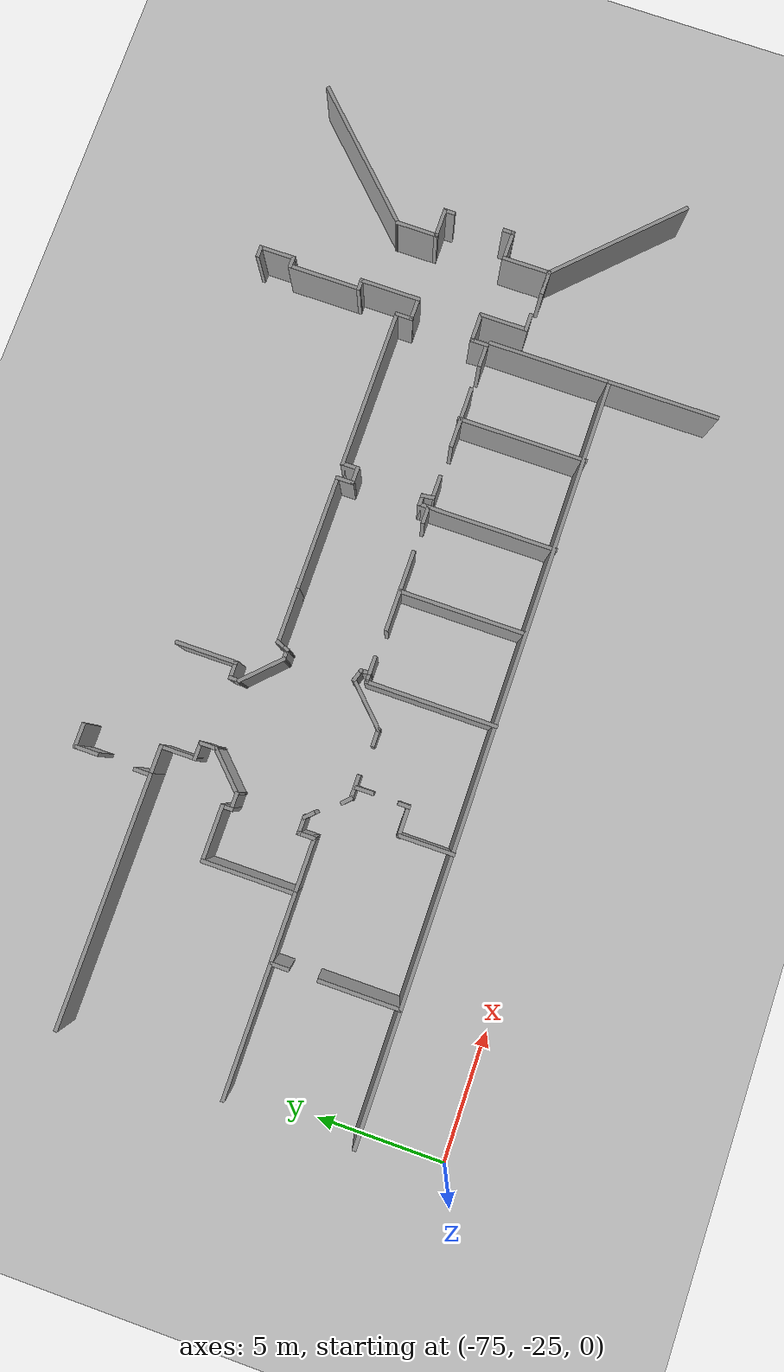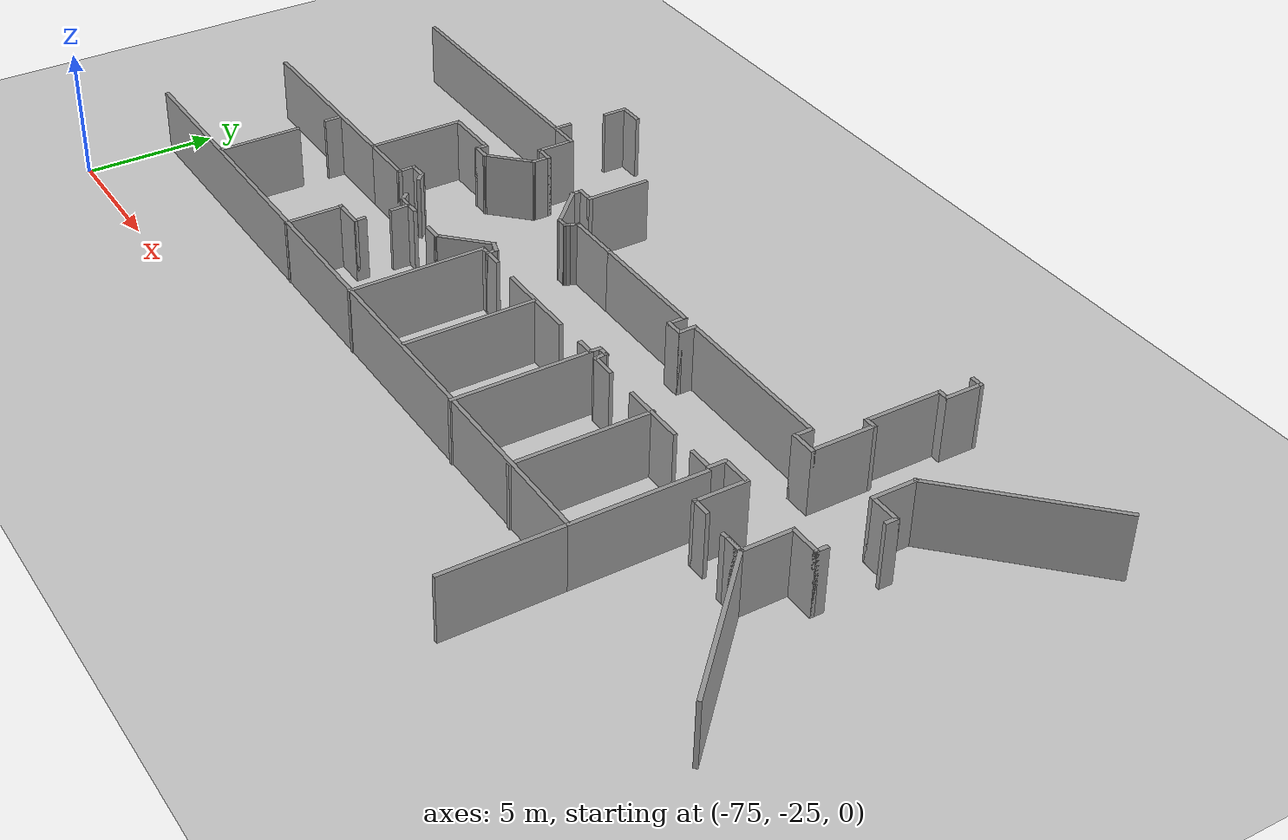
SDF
<sdf version="1.6">
 <world name="default">
  <model name="ground_plane">
   <static>1</static>
   <link name="link">
    <collision name="collision">
     <geometry><plane><normal>0 0 1</normal><size>200 100</size></plane></geometry>
     <surface><friction><ode><mu>100</mu><mu2>50</mu2></ode></friction></surface>
    </collision>
    <visual name="visual">
     <cast_shadows>0</cast_shadows>
     <geometry><plane><normal>0 0 1</normal><size>200 100</size></plane></geometry>
     <material>
      <script><uri>file://media/materials/scripts/gazebo.material</uri><name>Gazebo/Grey</name></script>
     </material>
    </visual>
   </link>
  </model>
  <model name="LuterFloorPlan">
   <pose>-8.27259 7.62647 0 0 -0 0</pose>
   <link name="Wall_110">
    <collision name="Wall_110_Collision">
     <geometry><box><size>30 0.15 2.5</size></box></geometry>
     <pose>0 0 1.25 0 -0 0</pose>
    </collision>
    <visual name="Wall_110_Visual">
     <pose>0 0 1.25 0 -0 0</pose>
     <geometry><box><size>30 0.15 2.5</size></box></geometry>
     <material>
      <script><uri>file://media/materials/scripts/gazebo.material</uri><name>Gazebo/Grey</name></script>
      <ambient>1 1 1 1</ambient>
     </material>
    </visual>
    <pose>-51.7345 -29.1583 0 0 -0 0</pose>
   </link>
   <link name="Wall_111">
    <collision name="Wall_111_Collision">
     <geometry><box><size>4.5 0.15 2.5</size></box></geometry>
     <pose>0 0 1.25 0 -0 0</pose>
    </collision>
    <visual name="Wall_111_Visual">
     <pose>0 0 1.25 0 -0 0</pose>
     <geometry><box><size>4.5 0.15 2.5</size></box></geometry>
     <material>
      <script><uri>file://media/materials/scripts/gazebo.material</uri><name>Gazebo/Grey</name></script>
      <ambient>1 1 1 1</ambient>
     </material>
    </visual>
    <pose>-36.8095 -31.3333 0 0 0 -1.5708</pose>
   </link>
   <link name="Wall_133">
    <collision name="Wall_133_Collision">
     <geometry><box><size>1 0.15 2.5</size></box></geometry>
     <pose>0 0 1.25 0 -0 0</pose>
    </collision>
    <visual name="Wall_133_Visual">
     <pose>0 0 1.25 0 -0 0</pose>
     <geometry><box><size>1 0.15 2.5</size></box></geometry>
     <material>
      <script><uri>file://media/materials/scripts/gazebo.material</uri><name>Gazebo/Grey</name></script>
      <ambient>1 1 1 1</ambient>
     </material>
    </visual>
    <pose>-56.2291 -14.6505 0 0 -0 3.14159</pose>
   </link>
   <link name="Wall_134">
    <collision name="Wall_134_Collision">
     <geometry><box><size>1 0.15 2.5</size></box></geometry>
     <pose>0 0 1.25 0 -0 0</pose>
    </collision>
    <visual name="Wall_134_Visual">
     <pose>0 0 1.25 0 -0 0</pose>
     <geometry><box><size>1 0.15 2.5</size></box></geometry>
     <material>
      <script><uri>file://media/materials/scripts/gazebo.material</uri><name>Gazebo/Grey</name></script>
      <ambient>1 1 1 1</ambient>
     </material>
    </visual>
    <pose>-56.6541 -15.0755 0 0 0 -1.5708</pose>
   </link>
   <link name="Wall_136">
    <collision name="Wall_136_Collision">
     <geometry><box><size>0.75 0.15 2.5</size></box></geometry>
     <pose>0 0 1.25 0 -0 0</pose>
    </collision>
    <visual name="Wall_136_Visual">
     <pose>0 0 1.25 0 -0 0</pose>
     <geometry><box><size>0.75 0.15 2.5</size></box></geometry>
     <material>
      <script><uri>file://media/materials/scripts/gazebo.material</uri><name>Gazebo/Grey</name></script>
      <ambient>1 1 1 1</ambient>
     </material>
    </visual>
    <pose>-56.7207 -17.3614 0 0 0 -1.5708</pose>
   </link>
   <link name="Wall_137">
    <collision name="Wall_137_Collision">
     <geometry><box><size>9.75 0.15 2.5</size></box></geometry>
     <pose>0 0 1.25 0 -0 0</pose>
    </collision>
    <visual name="Wall_137_Visual">
     <pose>0 0 1.25 0 -0 0</pose>
     <geometry><box><size>9.75 0.15 2.5</size></box></geometry>
     <material>
      <script><uri>file://media/materials/scripts/gazebo.material</uri><name>Gazebo/Grey</name></script>
      <ambient>1 1 1 1</ambient>
     </material>
    </visual>
    <pose>-61.5207 -17.6614 0 0 -0 3.14159</pose>
   </link>
   <link name="Wall_139">
    <collision name="Wall_139_Collision">
     <geometry><box><size>1.25 0.15 2.5</size></box></geometry>
     <pose>0 0 1.25 0 -0 0</pose>
    </collision>
    <visual name="Wall_139_Visual">
     <pose>0 0 1.25 0 -0 0</pose>
     <geometry><box><size>1.25 0.15 2.5</size></box></geometry>
     <material>
      <script><uri>file://media/materials/scripts/gazebo.material</uri><name>Gazebo/Grey</name></script>
      <ambient>1 1 1 1</ambient>
     </material>
    </visual>
    <pose>-56.1707 -17.6614 0 0 -0 0</pose>
   </link>
   <link name="Wall_140">
    <collision name="Wall_140_Collision">
     <geometry><box><size>1.5 0.15 2.5</size></box></geometry>
     <pose>0 0 1.25 0 -0 0</pose>
    </collision>
    <visual name="Wall_140_Visual">
     <pose>0 0 1.25 0 -0 0</pose>
     <geometry><box><size>1.5 0.15 2.5</size></box></geometry>
     <material>
      <script><uri>file://media/materials/scripts/gazebo.material</uri><name>Gazebo/Grey</name></script>
      <ambient>1 1 1 1</ambient>
     </material>
    </visual>
    <pose>-55.6207 -18.3364 0 0 0 -1.5708</pose>
   </link>
   <link name="Wall_141">
    <collision name="Wall_141_Collision">
     <geometry><box><size>0.75 0.15 2.5</size></box></geometry>
     <pose>0 0 1.25 0 -0 0</pose>
    </collision>
    <visual name="Wall_141_Visual">
     <pose>0 0 1.25 0 -0 0</pose>
     <geometry><box><size>0.75 0.15 2.5</size></box></geometry>
     <material>
      <script><uri>file://media/materials/scripts/gazebo.material</uri><name>Gazebo/Grey</name></script>
      <ambient>1 1 1 1</ambient>
     </material>
    </visual>
    <pose>-55.3207 -19.0114 0 0 -0 0</pose>
   </link>
   <link name="Wall_142">
    <collision name="Wall_142_Collision">
     <geometry><box><size>0.75 0.15 2.5</size></box></geometry>
     <pose>0 0 1.25 0 -0 0</pose>
    </collision>
    <visual name="Wall_142_Visual">
     <pose>0 0 1.25 0 -0 0</pose>
     <geometry><box><size>0.75 0.15 2.5</size></box></geometry>
     <material>
      <script><uri>file://media/materials/scripts/gazebo.material</uri><name>Gazebo/Grey</name></script>
      <ambient>1 1 1 1</ambient>
     </material>
    </visual>
    <pose>-55.0207 -19.3114 0 0 0 -1.5708</pose>
   </link>
   <link name="Wall_143">
    <collision name="Wall_143_Collision">
     <geometry><box><size>2 0.15 2.5</size></box></geometry>
     <pose>0 0 1.25 0 -0 0</pose>
    </collision>
    <visual name="Wall_143_Visual">
     <pose>0 0 1.25 0 -0 0</pose>
     <geometry><box><size>2 0.15 2.5</size></box></geometry>
     <material>
      <script><uri>file://media/materials/scripts/gazebo.material</uri><name>Gazebo/Grey</name></script>
      <ambient>1 1 1 1</ambient>
     </material>
    </visual>
    <pose>-55.6748 -20.2655 0 0 0 -2.35619</pose>
   </link>
   <link name="Wall_144">
    <collision name="Wall_144_Collision">
     <geometry><box><size>0.75 0.15 2.5</size></box></geometry>
     <pose>0 0 1.25 0 -0 0</pose>
    </collision>
    <visual name="Wall_144_Visual">
     <pose>0 0 1.25 0 -0 0</pose>
     <geometry><box><size>0.75 0.15 2.5</size></box></geometry>
     <material>
      <script><uri>file://media/materials/scripts/gazebo.material</uri><name>Gazebo/Grey</name></script>
      <ambient>1 1 1 1</ambient>
     </material>
    </visual>
    <pose>-56.6288 -20.9196 0 0 -0 3.14159</pose>
   </link>
   <link name="Wall_145">
    <collision name="Wall_145_Collision">
     <geometry><box><size>0.5 0.15 2.5</size></box></geometry>
     <pose>0 0 1.25 0 -0 0</pose>
    </collision>
    <visual name="Wall_145_Visual">
     <pose>0 0 1.25 0 -0 0</pose>
     <geometry><box><size>0.5 0.15 2.5</size></box></geometry>
     <material>
      <script><uri>file://media/materials/scripts/gazebo.material</uri><name>Gazebo/Grey</name></script>
      <ambient>1 1 1 1</ambient>
     </material>
    </visual>
    <pose>-56.9288 -20.7446 0 0 -0 1.5708</pose>
   </link>
   <link name="Wall_148">
    <collision name="Wall_148_Collision">
     <geometry><box><size>2.5 0.15 2.5</size></box></geometry>
     <pose>0 0 1.25 0 -0 0</pose>
    </collision>
    <visual name="Wall_148_Visual">
     <pose>0 0 1.25 0 -0 0</pose>
     <geometry><box><size>2.5 0.15 2.5</size></box></geometry>
     <material>
      <script><uri>file://media/materials/scripts/gazebo.material</uri><name>Gazebo/Grey</name></script>
      <ambient>1 1 1 1</ambient>
     </material>
    </visual>
    <pose>-51.7739 -18.0403 0 0 0 -1.5708</pose>
   </link>
   <link name="Wall_149">
    <collision name="Wall_149_Collision">
     <geometry><box><size>0.75 0.15 2.5</size></box></geometry>
     <pose>0 0 1.25 0 -0 0</pose>
    </collision>
    <visual name="Wall_149_Visual">
     <pose>0 0 1.25 0 -0 0</pose>
     <geometry><box><size>0.75 0.15 2.5</size></box></geometry>
     <material>
      <script><uri>file://media/materials/scripts/gazebo.material</uri><name>Gazebo/Grey</name></script>
      <ambient>1 1 1 1</ambient>
     </material>
    </visual>
    <pose>-52.0739 -19.2153 0 0 -0 3.14159</pose>
   </link>
   <link name="Wall_151">
    <collision name="Wall_151_Collision">
     <geometry><box><size>0.5 0.15 2.5</size></box></geometry>
     <pose>0 0 1.25 0 -0 0</pose>
    </collision>
    <visual name="Wall_151_Visual">
     <pose>0 0 1.25 0 -0 0</pose>
     <geometry><box><size>0.5 0.15 2.5</size></box></geometry>
     <material>
      <script><uri>file://media/materials/scripts/gazebo.material</uri><name>Gazebo/Grey</name></script>
      <ambient>1 1 1 1</ambient>
     </material>
    </visual>
    <pose>-52.3739 -19.3903 0 0 0 -1.5708</pose>
   </link>
   <link name="Wall_152">
    <collision name="Wall_152_Collision">
     <geometry><box><size>2 0.15 2.5</size></box></geometry>
     <pose>0 0 1.25 0 -0 0</pose>
    </collision>
    <visual name="Wall_152_Visual">
     <pose>0 0 1.25 0 -0 0</pose>
     <geometry><box><size>2 0.15 2.5</size></box></geometry>
     <material>
      <script><uri>file://media/materials/scripts/gazebo.material</uri><name>Gazebo/Grey</name></script>
      <ambient>1 1 1 1</ambient>
     </material>
    </visual>
    <pose>-51.7198 -20.2194 0 0 0 -0.785398</pose>
   </link>
   <link name="Wall_153">
    <collision name="Wall_153_Collision">
     <geometry><box><size>0.5 0.15 2.5</size></box></geometry>
     <pose>0 0 1.25 0 -0 0</pose>
    </collision>
    <visual name="Wall_153_Visual">
     <pose>0 0 1.25 0 -0 0</pose>
     <geometry><box><size>0.5 0.15 2.5</size></box></geometry>
     <material>
      <script><uri>file://media/materials/scripts/gazebo.material</uri><name>Gazebo/Grey</name></script>
      <ambient>1 1 1 1</ambient>
     </material>
    </visual>
    <pose>-50.8907 -20.8735 0 0 -0 0</pose>
   </link>
   <link name="Wall_154">
    <collision name="Wall_154_Collision">
     <geometry><box><size>0.25 0.15 2.5</size></box></geometry>
     <pose>0 0 1.25 0 -0 0</pose>
    </collision>
    <visual name="Wall_154_Visual">
     <pose>0 0 1.25 0 -0 0</pose>
     <geometry><box><size>0.25 0.15 2.5</size></box></geometry>
     <material>
      <script><uri>file://media/materials/scripts/gazebo.material</uri><name>Gazebo/Grey</name></script>
      <ambient>1 1 1 1</ambient>
     </material>
    </visual>
    <pose>-50.6907 -20.8302 0 0 -0 1.0472</pose>
   </link>
   <link name="Wall_156">
    <collision name="Wall_156_Collision">
     <geometry><box><size>0.604171 0.15 2.5</size></box></geometry>
     <pose>0 0 1.25 0 -0 0</pose>
    </collision>
    <visual name="Wall_156_Visual">
     <pose>0 0 1.25 0 -0 0</pose>
     <geometry><box><size>0.604171 0.15 2.5</size></box></geometry>
     <material>
      <script><uri>file://media/materials/scripts/gazebo.material</uri><name>Gazebo/Grey</name></script>
      <ambient>1 1 1 1</ambient>
     </material>
    </visual>
    <pose>-50.6231 -20.6661 0 0 0 -1.99089</pose>
   </link>
   <link name="Wall_158">
    <collision name="Wall_158_Collision">
     <geometry><box><size>2.25 0.15 2.5</size></box></geometry>
     <pose>0 0 1.25 0 -0 0</pose>
    </collision>
    <visual name="Wall_158_Visual">
     <pose>0 0 1.25 0 -0 0</pose>
     <geometry><box><size>2.25 0.15 2.5</size></box></geometry>
     <material>
      <script><uri>file://media/materials/scripts/gazebo.material</uri><name>Gazebo/Grey</name></script>
      <ambient>1 1 1 1</ambient>
     </material>
    </visual>
    <pose>-49.4805 -20.4588 0 0 -0 0</pose>
   </link>
   <link name="Wall_160">
    <collision name="Wall_160_Collision">
     <geometry><box><size>4.75 0.15 2.5</size></box></geometry>
     <pose>0 0 1.25 0 -0 0</pose>
    </collision>
    <visual name="Wall_160_Visual">
     <pose>0 0 1.25 0 -0 0</pose>
     <geometry><box><size>4.75 0.15 2.5</size></box></geometry>
     <material>
      <script><uri>file://media/materials/scripts/gazebo.material</uri><name>Gazebo/Grey</name></script>
      <ambient>1 1 1 1</ambient>
     </material>
    </visual>
    <pose>-46.1305 -20.4588 0 0 -0 0</pose>
   </link>
   <link name="Wall_162">
    <collision name="Wall_162_Collision">
     <geometry><box><size>0.75 0.15 2.5</size></box></geometry>
     <pose>0 0 1.25 0 -0 0</pose>
    </collision>
    <visual name="Wall_162_Visual">
     <pose>0 0 1.25 0 -0 0</pose>
     <geometry><box><size>0.75 0.15 2.5</size></box></geometry>
     <material>
      <script><uri>file://media/materials/scripts/gazebo.material</uri><name>Gazebo/Grey</name></script>
      <ambient>1 1 1 1</ambient>
     </material>
    </visual>
    <pose>-43.8305 -20.7588 0 0 0 -1.5708</pose>
   </link>
   <link name="Wall_163">
    <collision name="Wall_163_Collision">
     <geometry><box><size>0.75 0.15 2.5</size></box></geometry>
     <pose>0 0 1.25 0 -0 0</pose>
    </collision>
    <visual name="Wall_163_Visual">
     <pose>0 0 1.25 0 -0 0</pose>
     <geometry><box><size>0.75 0.15 2.5</size></box></geometry>
     <material>
      <script><uri>file://media/materials/scripts/gazebo.material</uri><name>Gazebo/Grey</name></script>
      <ambient>1 1 1 1</ambient>
     </material>
    </visual>
    <pose>-43.5305 -21.0588 0 0 -0 0</pose>
   </link>
   <link name="Wall_164">
    <collision name="Wall_164_Collision">
     <geometry><box><size>0.75 0.15 2.5</size></box></geometry>
     <pose>0 0 1.25 0 -0 0</pose>
    </collision>
    <visual name="Wall_164_Visual">
     <pose>0 0 1.25 0 -0 0</pose>
     <geometry><box><size>0.75 0.15 2.5</size></box></geometry>
     <material>
      <script><uri>file://media/materials/scripts/gazebo.material</uri><name>Gazebo/Grey</name></script>
      <ambient>1 1 1 1</ambient>
     </material>
    </visual>
    <pose>-43.2305 -20.7588 0 0 -0 1.5708</pose>
   </link>
   <link name="Wall_165">
    <collision name="Wall_165_Collision">
     <geometry><box><size>6.5 0.15 2.5</size></box></geometry>
     <pose>0 0 1.25 0 -0 0</pose>
    </collision>
    <visual name="Wall_165_Visual">
     <pose>0 0 1.25 0 -0 0</pose>
     <geometry><box><size>6.5 0.15 2.5</size></box></geometry>
     <material>
      <script><uri>file://media/materials/scripts/gazebo.material</uri><name>Gazebo/Grey</name></script>
      <ambient>1 1 1 1</ambient>
     </material>
    </visual>
    <pose>-40.0555 -20.4588 0 0 -0 0</pose>
   </link>
   <link name="Wall_167">
    <collision name="Wall_167_Collision">
     <geometry><box><size>2.25 0.15 2.5</size></box></geometry>
     <pose>0 0 1.25 0 -0 0</pose>
    </collision>
    <visual name="Wall_167_Visual">
     <pose>0 0 1.25 0 -0 0</pose>
     <geometry><box><size>2.25 0.15 2.5</size></box></geometry>
     <material>
      <script><uri>file://media/materials/scripts/gazebo.material</uri><name>Gazebo/Grey</name></script>
      <ambient>1 1 1 1</ambient>
     </material>
    </visual>
    <pose>-57.9788 -20.5696 0 0 -0 3.14159</pose>
   </link>
   <link name="Wall_168">
    <collision name="Wall_168_Collision">
     <geometry><box><size>3.75 0.15 2.5</size></box></geometry>
     <pose>0 0 1.25 0 -0 0</pose>
    </collision>
    <visual name="Wall_168_Visual">
     <pose>0 0 1.25 0 -0 0</pose>
     <geometry><box><size>3.75 0.15 2.5</size></box></geometry>
     <material>
      <script><uri>file://media/materials/scripts/gazebo.material</uri><name>Gazebo/Grey</name></script>
      <ambient>1 1 1 1</ambient>
     </material>
    </visual>
    <pose>-59.0288 -22.3696 0 0 0 -1.5708</pose>
   </link>
   <link name="Wall_169">
    <collision name="Wall_169_Collision">
     <geometry><box><size>2.25 0.15 2.5</size></box></geometry>
     <pose>0 0 1.25 0 -0 0</pose>
    </collision>
    <visual name="Wall_169_Visual">
     <pose>0 0 1.25 0 -0 0</pose>
     <geometry><box><size>2.25 0.15 2.5</size></box></geometry>
     <material>
      <script><uri>file://media/materials/scripts/gazebo.material</uri><name>Gazebo/Grey</name></script>
      <ambient>1 1 1 1</ambient>
     </material>
    </visual>
    <pose>-57.9788 -24.1696 0 0 -0 0</pose>
   </link>
   <link name="Wall_170">
    <collision name="Wall_170_Collision">
     <geometry><box><size>0.75 0.15 2.5</size></box></geometry>
     <pose>0 0 1.25 0 -0 0</pose>
    </collision>
    <visual name="Wall_170_Visual">
     <pose>0 0 1.25 0 -0 0</pose>
     <geometry><box><size>0.75 0.15 2.5</size></box></geometry>
     <material>
      <script><uri>file://media/materials/scripts/gazebo.material</uri><name>Gazebo/Grey</name></script>
      <ambient>1 1 1 1</ambient>
     </material>
    </visual>
    <pose>-56.9288 -23.8696 0 0 -0 1.5708</pose>
   </link>
   <link name="Wall_171">
    <collision name="Wall_171_Collision">
     <geometry><box><size>0.75 0.15 2.5</size></box></geometry>
     <pose>0 0 1.25 0 -0 0</pose>
    </collision>
    <visual name="Wall_171_Visual">
     <pose>0 0 1.25 0 -0 0</pose>
     <geometry><box><size>0.75 0.15 2.5</size></box></geometry>
     <material>
      <script><uri>file://media/materials/scripts/gazebo.material</uri><name>Gazebo/Grey</name></script>
      <ambient>1 1 1 1</ambient>
     </material>
    </visual>
    <pose>-56.6288 -23.5696 0 0 -0 0</pose>
   </link>
   <link name="Wall_172">
    <collision name="Wall_172_Collision">
     <geometry><box><size>0.5 0.15 2.5</size></box></geometry>
     <pose>0 0 1.25 0 -0 0</pose>
    </collision>
    <visual name="Wall_172_Visual">
     <pose>0 0 1.25 0 -0 0</pose>
     <geometry><box><size>0.5 0.15 2.5</size></box></geometry>
     <material>
      <script><uri>file://media/materials/scripts/gazebo.material</uri><name>Gazebo/Grey</name></script>
      <ambient>1 1 1 1</ambient>
     </material>
    </visual>
    <pose>-56.2051 -23.6933 0 0 0 -0.785398</pose>
   </link>
   <link name="Wall_174">
    <collision name="Wall_174_Collision">
     <geometry><box><size>7.75 0.15 2.5</size></box></geometry>
     <pose>0 0 1.25 0 -0 0</pose>
    </collision>
    <visual name="Wall_174_Visual">
     <pose>0 0 1.25 0 -0 0</pose>
     <geometry><box><size>7.75 0.15 2.5</size></box></geometry>
     <material>
      <script><uri>file://media/materials/scripts/gazebo.material</uri><name>Gazebo/Grey</name></script>
      <ambient>1 1 1 1</ambient>
     </material>
    </visual>
    <pose>-62.8288 -24.1696 0 0 -0 3.14159</pose>
   </link>
   <link name="Wall_176">
    <collision name="Wall_176_Collision">
     <geometry><box><size>0.75 0.15 2.5</size></box></geometry>
     <pose>0 0 1.25 0 -0 0</pose>
    </collision>
    <visual name="Wall_176_Visual">
     <pose>0 0 1.25 0 -0 0</pose>
     <geometry><box><size>0.75 0.15 2.5</size></box></geometry>
     <material>
      <script><uri>file://media/materials/scripts/gazebo.material</uri><name>Gazebo/Grey</name></script>
      <ambient>1 1 1 1</ambient>
     </material>
    </visual>
    <pose>-61.6395 -24.5147 0 0 0 -1.5708</pose>
   </link>
   <link name="Wall_178">
    <collision name="Wall_178_Collision">
     <geometry><box><size>3.25 0.15 2.5</size></box></geometry>
     <pose>0 0 1.25 0 -0 0</pose>
    </collision>
    <visual name="Wall_178_Visual">
     <pose>0 0 1.25 0 -0 0</pose>
     <geometry><box><size>3.25 0.15 2.5</size></box></geometry>
     <material>
      <script><uri>file://media/materials/scripts/gazebo.material</uri><name>Gazebo/Grey</name></script>
      <ambient>1 1 1 1</ambient>
     </material>
    </visual>
    <pose>-61.6395 -27.5844 0 0 -0 1.5708</pose>
   </link>
   <link name="Wall_180">
    <collision name="Wall_180_Collision">
     <geometry><box><size>0.5 0.15 2.5</size></box></geometry>
     <pose>0 0 1.25 0 -0 0</pose>
    </collision>
    <visual name="Wall_180_Visual">
     <pose>0 0 1.25 0 -0 0</pose>
     <geometry><box><size>0.5 0.15 2.5</size></box></geometry>
     <material>
      <script><uri>file://media/materials/scripts/gazebo.material</uri><name>Gazebo/Grey</name></script>
      <ambient>1 1 1 1</ambient>
     </material>
    </visual>
    <pose>-55.2471 -24.841 0 0 0 -0.785398</pose>
   </link>
   <link name="Wall_181">
    <collision name="Wall_181_Collision">
     <geometry><box><size>1 0.15 2.5</size></box></geometry>
     <pose>0 0 1.25 0 -0 0</pose>
    </collision>
    <visual name="Wall_181_Visual">
     <pose>0 0 1.25 0 -0 0</pose>
     <geometry><box><size>1 0.15 2.5</size></box></geometry>
     <material>
      <script><uri>file://media/materials/scripts/gazebo.material</uri><name>Gazebo/Grey</name></script>
      <ambient>1 1 1 1</ambient>
     </material>
    </visual>
    <pose>-54.6983 -24.9647 0 0 -0 0</pose>
   </link>
   <link name="Wall_183">
    <collision name="Wall_183_Collision">
     <geometry><box><size>0.75 0.15 2.5</size></box></geometry>
     <pose>0 0 1.25 0 -0 0</pose>
    </collision>
    <visual name="Wall_183_Visual">
     <pose>0 0 1.25 0 -0 0</pose>
     <geometry><box><size>0.75 0.15 2.5</size></box></geometry>
     <material>
      <script><uri>file://media/materials/scripts/gazebo.material</uri><name>Gazebo/Grey</name></script>
      <ambient>1 1 1 1</ambient>
     </material>
    </visual>
    <pose>-54.6831 -25.3347 0 0 0 -1.5708</pose>
   </link>
   <link name="Wall_185">
    <collision name="Wall_185_Collision">
     <geometry><box><size>0.5 0.15 2.5</size></box></geometry>
     <pose>0 0 1.25 0 -0 0</pose>
    </collision>
    <visual name="Wall_185_Visual">
     <pose>0 0 1.25 0 -0 0</pose>
     <geometry><box><size>0.5 0.15 2.5</size></box></geometry>
     <material>
      <script><uri>file://media/materials/scripts/gazebo.material</uri><name>Gazebo/Grey</name></script>
      <ambient>1 1 1 1</ambient>
     </material>
    </visual>
    <pose>-54.7129 -26.904 0 0 0 -1.5708</pose>
   </link>
   <link name="Wall_186">
    <collision name="Wall_186_Collision">
     <geometry><box><size>1.27 0.15 2.5</size></box></geometry>
     <pose>0 0 1.25 0 -0 0</pose>
    </collision>
    <visual name="Wall_186_Visual">
     <pose>0 0 1.25 0 -0 0</pose>
     <geometry><box><size>1.27 0.15 2.5</size></box></geometry>
     <material>
      <script><uri>file://media/materials/scripts/gazebo.material</uri><name>Gazebo/Grey</name></script>
      <ambient>1 1 1 1</ambient>
     </material>
    </visual>
    <pose>-55.2729 -27.079 0 0 -0 3.14159</pose>
   </link>
   <link name="Wall_188">
    <collision name="Wall_188_Collision">
     <geometry><box><size>2.25 0.15 2.5</size></box></geometry>
     <pose>0 0 1.25 0 -0 0</pose>
    </collision>
    <visual name="Wall_188_Visual">
     <pose>0 0 1.25 0 -0 0</pose>
     <geometry><box><size>2.25 0.15 2.5</size></box></geometry>
     <material>
      <script><uri>file://media/materials/scripts/gazebo.material</uri><name>Gazebo/Grey</name></script>
      <ambient>1 1 1 1</ambient>
     </material>
    </visual>
    <pose>-55.8129 -28.129 0 0 0 -1.5708</pose>
   </link>
   <link name="Wall_190">
    <collision name="Wall_190_Collision">
     <geometry><box><size>0.75 0.15 2.5</size></box></geometry>
     <pose>0 0 1.25 0 -0 0</pose>
    </collision>
    <visual name="Wall_190_Visual">
     <pose>0 0 1.25 0 -0 0</pose>
     <geometry><box><size>0.75 0.15 2.5</size></box></geometry>
     <material>
      <script><uri>file://media/materials/scripts/gazebo.material</uri><name>Gazebo/Grey</name></script>
      <ambient>1 1 1 1</ambient>
     </material>
    </visual>
    <pose>-52.6942 -25.0866 0 0 -0 0</pose>
   </link>
   <link name="Wall_191">
    <collision name="Wall_191_Collision">
     <geometry><box><size>2.2098 0.15 2.5</size></box></geometry>
     <pose>0 0 1.25 0 -0 0</pose>
    </collision>
    <visual name="Wall_191_Visual">
     <pose>0 0 1.25 0 -0 0</pose>
     <geometry><box><size>2.2098 0.15 2.5</size></box></geometry>
     <material>
      <script><uri>file://media/materials/scripts/gazebo.material</uri><name>Gazebo/Grey</name></script>
      <ambient>1 1 1 1</ambient>
     </material>
    </visual>
    <pose>-51.666 -24.3584 0 0 -0 0.785398</pose>
   </link>
   <link name="Wall_196">
    <collision name="Wall_196_Collision">
     <geometry><box><size>5.25 0.15 2.5</size></box></geometry>
     <pose>0 0 1.25 0 -0 0</pose>
    </collision>
    <visual name="Wall_196_Visual">
     <pose>0 0 1.25 0 -0 0</pose>
     <geometry><box><size>5.25 0.15 2.5</size></box></geometry>
     <material>
      <script><uri>file://media/materials/scripts/gazebo.material</uri><name>Gazebo/Grey</name></script>
      <ambient>1 1 1 1</ambient>
     </material>
    </visual>
    <pose>-50.8542 -26.6366 0 0 -0 1.5708</pose>
   </link>
   <link name="Wall_200">
    <collision name="Wall_200_Collision">
     <geometry><box><size>0.5 0.15 2.5</size></box></geometry>
     <pose>0 0 1.25 0 -0 0</pose>
    </collision>
    <visual name="Wall_200_Visual">
     <pose>0 0 1.25 0 -0 0</pose>
     <geometry><box><size>0.5 0.15 2.5</size></box></geometry>
     <material>
      <script><uri>file://media/materials/scripts/gazebo.material</uri><name>Gazebo/Grey</name></script>
      <ambient>1 1 1 1</ambient>
     </material>
    </visual>
    <pose>-50.6792 -24.0866 0 0 -0 0</pose>
   </link>
   <link name="Wall_202">
    <collision name="Wall_202_Collision">
     <geometry><box><size>0.472828 0.15 2.5</size></box></geometry>
     <pose>0 0 1.25 0 -0 0</pose>
    </collision>
    <visual name="Wall_202_Visual">
     <pose>0 0 1.25 0 -0 0</pose>
     <geometry><box><size>0.472828 0.15 2.5</size></box></geometry>
     <material>
      <script><uri>file://media/materials/scripts/gazebo.material</uri><name>Gazebo/Grey</name></script>
      <ambient>1 1 1 1</ambient>
     </material>
    </visual>
    <pose>-50.5184 -23.9259 0 0 -0 1.65896</pose>
   </link>
   <link name="Wall_203">
    <collision name="Wall_203_Collision">
     <geometry><box><size>0.576955 0.15 2.5</size></box></geometry>
     <pose>0 0 1.25 0 -0 0</pose>
    </collision>
    <visual name="Wall_203_Visual">
     <pose>0 0 1.25 0 -0 0</pose>
     <geometry><box><size>0.576955 0.15 2.5</size></box></geometry>
     <material>
      <script><uri>file://media/materials/scripts/gazebo.material</uri><name>Gazebo/Grey</name></script>
      <ambient>1 1 1 1</ambient>
     </material>
    </visual>
    <pose>-50.7352 -23.6919 0 0 -0 2.82007</pose>
   </link>
   <link name="Wall_205">
    <collision name="Wall_205_Collision">
     <geometry><box><size>0.75 0.15 2.5</size></box></geometry>
     <pose>0 0 1.25 0 -0 0</pose>
    </collision>
    <visual name="Wall_205_Visual">
     <pose>0 0 1.25 0 -0 0</pose>
     <geometry><box><size>0.75 0.15 2.5</size></box></geometry>
     <material>
      <script><uri>file://media/materials/scripts/gazebo.material</uri><name>Gazebo/Grey</name></script>
      <ambient>1 1 1 1</ambient>
     </material>
    </visual>
    <pose>-50.2042 -24.0866 0 0 -0 0</pose>
   </link>
   <link name="Wall_207">
    <collision name="Wall_207_Collision">
     <geometry><box><size>3.25 0.15 2.5</size></box></geometry>
     <pose>0 0 1.25 0 -0 0</pose>
    </collision>
    <visual name="Wall_207_Visual">
     <pose>0 0 1.25 0 -0 0</pose>
     <geometry><box><size>3.25 0.15 2.5</size></box></geometry>
     <material>
      <script><uri>file://media/materials/scripts/gazebo.material</uri><name>Gazebo/Grey</name></script>
      <ambient>1 1 1 1</ambient>
     </material>
    </visual>
    <pose>-47.18 -24.1465 0 0 -0 0</pose>
   </link>
   <link name="Wall_209">
    <collision name="Wall_209_Collision">
     <geometry><box><size>5 0.15 2.5</size></box></geometry>
     <pose>0 0 1.25 0 -0 0</pose>
    </collision>
    <visual name="Wall_209_Visual">
     <pose>0 0 1.25 0 -0 0</pose>
     <geometry><box><size>5 0.15 2.5</size></box></geometry>
     <material>
      <script><uri>file://media/materials/scripts/gazebo.material</uri><name>Gazebo/Grey</name></script>
      <ambient>1 1 1 1</ambient>
     </material>
    </visual>
    <pose>-47.2091 -26.6324 0 0 0 -1.5708</pose>
   </link>
   <link name="Wall_211">
    <collision name="Wall_211_Collision">
     <geometry><box><size>0.75 0.15 2.5</size></box></geometry>
     <pose>0 0 1.25 0 -0 0</pose>
    </collision>
    <visual name="Wall_211_Visual">
     <pose>0 0 1.25 0 -0 0</pose>
     <geometry><box><size>0.75 0.15 2.5</size></box></geometry>
     <material>
      <script><uri>file://media/materials/scripts/gazebo.material</uri><name>Gazebo/Grey</name></script>
      <ambient>1 1 1 1</ambient>
     </material>
    </visual>
    <pose>-44.0803 -24.1161 0 0 -0 0</pose>
   </link>
   <link name="Wall_212">
    <collision name="Wall_212_Collision">
     <geometry><box><size>0.5 0.15 2.5</size></box></geometry>
     <pose>0 0 1.25 0 -0 0</pose>
    </collision>
    <visual name="Wall_212_Visual">
     <pose>0 0 1.25 0 -0 0</pose>
     <geometry><box><size>0.5 0.15 2.5</size></box></geometry>
     <material>
      <script><uri>file://media/materials/scripts/gazebo.material</uri><name>Gazebo/Grey</name></script>
      <ambient>1 1 1 1</ambient>
     </material>
    </visual>
    <pose>-43.7803 -23.9411 0 0 -0 1.5708</pose>
   </link>
   <link name="Wall_213">
    <collision name="Wall_213_Collision">
     <geometry><box><size>0.5 0.15 2.5</size></box></geometry>
     <pose>0 0 1.25 0 -0 0</pose>
    </collision>
    <visual name="Wall_213_Visual">
     <pose>0 0 1.25 0 -0 0</pose>
     <geometry><box><size>0.5 0.15 2.5</size></box></geometry>
     <material>
      <script><uri>file://media/materials/scripts/gazebo.material</uri><name>Gazebo/Grey</name></script>
      <ambient>1 1 1 1</ambient>
     </material>
    </visual>
    <pose>-43.6053 -23.7661 0 0 -0 0</pose>
   </link>
   <link name="Wall_215">
    <collision name="Wall_215_Collision">
     <geometry><box><size>1 0.15 2.5</size></box></geometry>
     <pose>0 0 1.25 0 -0 0</pose>
    </collision>
    <visual name="Wall_215_Visual">
     <pose>0 0 1.25 0 -0 0</pose>
     <geometry><box><size>1 0.15 2.5</size></box></geometry>
     <material>
      <script><uri>file://media/materials/scripts/gazebo.material</uri><name>Gazebo/Grey</name></script>
      <ambient>1 1 1 1</ambient>
     </material>
    </visual>
    <pose>-42.9546 -24.1608 0 0 -0 3.14159</pose>
   </link>
   <link name="Wall_216">
    <collision name="Wall_216_Collision">
     <geometry><box><size>0.547969 0.15 2.5</size></box></geometry>
     <pose>0 0 1.25 0 -0 0</pose>
    </collision>
    <visual name="Wall_216_Visual">
     <pose>0 0 1.25 0 -0 0</pose>
     <geometry><box><size>0.547969 0.15 2.5</size></box></geometry>
     <material>
      <script><uri>file://media/materials/scripts/gazebo.material</uri><name>Gazebo/Grey</name></script>
      <ambient>1 1 1 1</ambient>
     </material>
    </visual>
    <pose>-43.4049 -23.9635 0 0 -0 1.69848</pose>
   </link>
   <link name="Wall_219">
    <collision name="Wall_219_Collision">
     <geometry><box><size>5.25 0.15 2.5</size></box></geometry>
     <pose>0 0 1.25 0 -0 0</pose>
    </collision>
    <visual name="Wall_219_Visual">
     <pose>0 0 1.25 0 -0 0</pose>
     <geometry><box><size>5.25 0.15 2.5</size></box></geometry>
     <material>
      <script><uri>file://media/materials/scripts/gazebo.material</uri><name>Gazebo/Grey</name></script>
      <ambient>1 1 1 1</ambient>
     </material>
    </visual>
    <pose>-43.7803 -26.6661 0 0 0 -1.5708</pose>
   </link>
   <link name="Wall_221">
    <collision name="Wall_221_Collision">
     <geometry><box><size>2.5 0.15 2.5</size></box></geometry>
     <pose>0 0 1.25 0 -0 0</pose>
    </collision>
    <visual name="Wall_221_Visual">
     <pose>0 0 1.25 0 -0 0</pose>
     <geometry><box><size>2.5 0.15 2.5</size></box></geometry>
     <material>
      <script><uri>file://media/materials/scripts/gazebo.material</uri><name>Gazebo/Grey</name></script>
      <ambient>1 1 1 1</ambient>
     </material>
    </visual>
    <pose>-40.0165 -24.1785 0 0 -0 0</pose>
   </link>
   <link name="Wall_223">
    <collision name="Wall_223_Collision">
     <geometry><box><size>5.25 0.15 2.5</size></box></geometry>
     <pose>0 0 1.25 0 -0 0</pose>
    </collision>
    <visual name="Wall_223_Visual">
     <pose>0 0 1.25 0 -0 0</pose>
     <geometry><box><size>5.25 0.15 2.5</size></box></geometry>
     <material>
      <script><uri>file://media/materials/scripts/gazebo.material</uri><name>Gazebo/Grey</name></script>
      <ambient>1 1 1 1</ambient>
     </material>
    </visual>
    <pose>-40.0898 -26.6778 0 0 -0 1.5708</pose>
   </link>
   <link name="Wall_225">
    <collision name="Wall_225_Collision">
     <geometry><box><size>1 0.15 2.5</size></box></geometry>
     <pose>0 0 1.25 0 -0 0</pose>
    </collision>
    <visual name="Wall_225_Visual">
     <pose>0 0 1.25 0 -0 0</pose>
     <geometry><box><size>1 0.15 2.5</size></box></geometry>
     <material>
      <script><uri>file://media/materials/scripts/gazebo.material</uri><name>Gazebo/Grey</name></script>
      <ambient>1 1 1 1</ambient>
     </material>
    </visual>
    <pose>-37.3619 -24.1819 0 0 -0 0</pose>
   </link>
   <link name="Wall_226">
    <collision name="Wall_226_Collision">
     <geometry><box><size>0.75 0.15 2.5</size></box></geometry>
     <pose>0 0 1.25 0 -0 0</pose>
    </collision>
    <visual name="Wall_226_Visual">
     <pose>0 0 1.25 0 -0 0</pose>
     <geometry><box><size>0.75 0.15 2.5</size></box></geometry>
     <material>
      <script><uri>file://media/materials/scripts/gazebo.material</uri><name>Gazebo/Grey</name></script>
      <ambient>1 1 1 1</ambient>
     </material>
    </visual>
    <pose>-36.9369 -23.8819 0 0 -0 1.5708</pose>
   </link>
   <link name="Wall_227">
    <collision name="Wall_227_Collision">
     <geometry><box><size>1.25 0.15 2.5</size></box></geometry>
     <pose>0 0 1.25 0 -0 0</pose>
    </collision>
    <visual name="Wall_227_Visual">
     <pose>0 0 1.25 0 -0 0</pose>
     <geometry><box><size>1.25 0.15 2.5</size></box></geometry>
     <material>
      <script><uri>file://media/materials/scripts/gazebo.material</uri><name>Gazebo/Grey</name></script>
      <ambient>1 1 1 1</ambient>
     </material>
    </visual>
    <pose>-36.3869 -23.5819 0 0 -0 0</pose>
   </link>
   <link name="Wall_228">
    <collision name="Wall_228_Collision">
     <geometry><box><size>2 0.15 2.5</size></box></geometry>
     <pose>0 0 1.25 0 -0 0</pose>
    </collision>
    <visual name="Wall_228_Visual">
     <pose>0 0 1.25 0 -0 0</pose>
     <geometry><box><size>2 0.15 2.5</size></box></geometry>
     <material>
      <script><uri>file://media/materials/scripts/gazebo.material</uri><name>Gazebo/Grey</name></script>
      <ambient>1 1 1 1</ambient>
     </material>
    </visual>
    <pose>-35.8369 -24.5069 0 0 0 -1.5708</pose>
   </link>
   <link name="Wall_229">
    <collision name="Wall_229_Collision">
     <geometry><box><size>0.75 0.15 2.5</size></box></geometry>
     <pose>0 0 1.25 0 -0 0</pose>
    </collision>
    <visual name="Wall_229_Visual">
     <pose>0 0 1.25 0 -0 0</pose>
     <geometry><box><size>0.75 0.15 2.5</size></box></geometry>
     <material>
      <script><uri>file://media/materials/scripts/gazebo.material</uri><name>Gazebo/Grey</name></script>
      <ambient>1 1 1 1</ambient>
     </material>
    </visual>
    <pose>-35.5369 -25.4319 0 0 -0 0</pose>
   </link>
   <link name="Wall_231">
    <collision name="Wall_231_Collision">
     <geometry><box><size>5 0.15 2.5</size></box></geometry>
     <pose>0 0 1.25 0 -0 0</pose>
    </collision>
    <visual name="Wall_231_Visual">
     <pose>0 0 1.25 0 -0 0</pose>
     <geometry><box><size>5 0.15 2.5</size></box></geometry>
     <material>
      <script><uri>file://media/materials/scripts/gazebo.material</uri><name>Gazebo/Grey</name></script>
      <ambient>1 1 1 1</ambient>
     </material>
    </visual>
    <pose>-36.8095 -26.7333 0 0 -0 1.5708</pose>
   </link>
   <link name="Wall_233">
    <collision name="Wall_233_Collision">
     <geometry><box><size>0.75 0.15 2.5</size></box></geometry>
     <pose>0 0 1.25 0 -0 0</pose>
    </collision>
    <visual name="Wall_233_Visual">
     <pose>0 0 1.25 0 -0 0</pose>
     <geometry><box><size>0.75 0.15 2.5</size></box></geometry>
     <material>
      <script><uri>file://media/materials/scripts/gazebo.material</uri><name>Gazebo/Grey</name></script>
      <ambient>1 1 1 1</ambient>
     </material>
    </visual>
    <pose>-33.6306 -25.5581 0 0 -0 0</pose>
   </link>
   <link name="Wall_234">
    <collision name="Wall_234_Collision">
     <geometry><box><size>1 0.15 2.5</size></box></geometry>
     <pose>0 0 1.25 0 -0 0</pose>
    </collision>
    <visual name="Wall_234_Visual">
     <pose>0 0 1.25 0 -0 0</pose>
     <geometry><box><size>1 0.15 2.5</size></box></geometry>
     <material>
      <script><uri>file://media/materials/scripts/gazebo.material</uri><name>Gazebo/Grey</name></script>
      <ambient>1 1 1 1</ambient>
     </material>
    </visual>
    <pose>-33.7556 -25.5581 0 0 -0 3.14159</pose>
   </link>
   <link name="Wall_236">
    <collision name="Wall_236_Collision">
     <geometry><box><size>2 0.15 2.5</size></box></geometry>
     <pose>0 0 1.25 0 -0 0</pose>
    </collision>
    <visual name="Wall_236_Visual">
     <pose>0 0 1.25 0 -0 0</pose>
     <geometry><box><size>2 0.15 2.5</size></box></geometry>
     <material>
      <script><uri>file://media/materials/scripts/gazebo.material</uri><name>Gazebo/Grey</name></script>
      <ambient>1 1 1 1</ambient>
     </material>
    </visual>
    <pose>-33.3306 -24.6331 0 0 -0 1.5708</pose>
   </link>
   <link name="Wall_238">
    <collision name="Wall_238_Collision">
     <geometry><box><size>1.25 0.15 2.5</size></box></geometry>
     <pose>0 0 1.25 0 -0 0</pose>
    </collision>
    <visual name="Wall_238_Visual">
     <pose>0 0 1.25 0 -0 0</pose>
     <geometry><box><size>1.25 0.15 2.5</size></box></geometry>
     <material>
      <script><uri>file://media/materials/scripts/gazebo.material</uri><name>Gazebo/Grey</name></script>
      <ambient>1 1 1 1</ambient>
     </material>
    </visual>
    <pose>-32.7806 -23.7081 0 0 -0 0</pose>
   </link>
   <link name="Wall_239">
    <collision name="Wall_239_Collision">
     <geometry><box><size>0.5 0.15 2.5</size></box></geometry>
     <pose>0 0 1.25 0 -0 0</pose>
    </collision>
    <visual name="Wall_239_Visual">
     <pose>0 0 1.25 0 -0 0</pose>
     <geometry><box><size>0.5 0.15 2.5</size></box></geometry>
     <material>
      <script><uri>file://media/materials/scripts/gazebo.material</uri><name>Gazebo/Grey</name></script>
      <ambient>1 1 1 1</ambient>
     </material>
    </visual>
    <pose>-32.2306 -23.5331 0 0 -0 1.5708</pose>
   </link>
   <link name="Wall_241">
    <collision name="Wall_241_Collision">
     <geometry><box><size>0.5 0.15 2.5</size></box></geometry>
     <pose>0 0 1.25 0 -0 0</pose>
    </collision>
    <visual name="Wall_241_Visual">
     <pose>0 0 1.25 0 -0 0</pose>
     <geometry><box><size>0.5 0.15 2.5</size></box></geometry>
     <material>
      <script><uri>file://media/materials/scripts/gazebo.material</uri><name>Gazebo/Grey</name></script>
      <ambient>1 1 1 1</ambient>
     </material>
    </visual>
    <pose>-32.2066 -21.0428 0 0 -0 1.5708</pose>
   </link>
   <link name="Wall_242">
    <collision name="Wall_242_Collision">
     <geometry><box><size>1.25 0.15 2.5</size></box></geometry>
     <pose>0 0 1.25 0 -0 0</pose>
    </collision>
    <visual name="Wall_242_Visual">
     <pose>0 0 1.25 0 -0 0</pose>
     <geometry><box><size>1.25 0.15 2.5</size></box></geometry>
     <material>
      <script><uri>file://media/materials/scripts/gazebo.material</uri><name>Gazebo/Grey</name></script>
      <ambient>1 1 1 1</ambient>
     </material>
    </visual>
    <pose>-32.7566 -20.8678 0 0 -0 3.14159</pose>
   </link>
   <link name="Wall_243">
    <collision name="Wall_243_Collision">
     <geometry><box><size>1.75 0.15 2.5</size></box></geometry>
     <pose>0 0 1.25 0 -0 0</pose>
    </collision>
    <visual name="Wall_243_Visual">
     <pose>0 0 1.25 0 -0 0</pose>
     <geometry><box><size>1.75 0.15 2.5</size></box></geometry>
     <material>
      <script><uri>file://media/materials/scripts/gazebo.material</uri><name>Gazebo/Grey</name></script>
      <ambient>1 1 1 1</ambient>
     </material>
    </visual>
    <pose>-33.3066 -20.0678 0 0 -0 1.5708</pose>
   </link>
   <link name="Wall_245">
    <collision name="Wall_245_Collision">
     <geometry><box><size>0.75 0.15 2.5</size></box></geometry>
     <pose>0 0 1.25 0 -0 0</pose>
    </collision>
    <visual name="Wall_245_Visual">
     <pose>0 0 1.25 0 -0 0</pose>
     <geometry><box><size>0.75 0.15 2.5</size></box></geometry>
     <material>
      <script><uri>file://media/materials/scripts/gazebo.material</uri><name>Gazebo/Grey</name></script>
      <ambient>1 1 1 1</ambient>
     </material>
    </visual>
    <pose>-36.8805 -20.7588 0 0 0 -1.5708</pose>
   </link>
   <link name="Wall_246">
    <collision name="Wall_246_Collision">
     <geometry><box><size>1 0.15 2.5</size></box></geometry>
     <pose>0 0 1.25 0 -0 0</pose>
    </collision>
    <visual name="Wall_246_Visual">
     <pose>0 0 1.25 0 -0 0</pose>
     <geometry><box><size>1 0.15 2.5</size></box></geometry>
     <material>
      <script><uri>file://media/materials/scripts/gazebo.material</uri><name>Gazebo/Grey</name></script>
      <ambient>1 1 1 1</ambient>
     </material>
    </visual>
    <pose>-36.4555 -21.0588 0 0 -0 0</pose>
   </link>
   <link name="Wall_247">
    <collision name="Wall_247_Collision">
     <geometry><box><size>2.5 0.15 2.5</size></box></geometry>
     <pose>0 0 1.25 0 -0 0</pose>
    </collision>
    <visual name="Wall_247_Visual">
     <pose>0 0 1.25 0 -0 0</pose>
     <geometry><box><size>2.5 0.15 2.5</size></box></geometry>
     <material>
      <script><uri>file://media/materials/scripts/gazebo.material</uri><name>Gazebo/Grey</name></script>
      <ambient>1 1 1 1</ambient>
     </material>
    </visual>
    <pose>-36.0305 -19.8838 0 0 -0 1.5708</pose>
   </link>
   <link name="Wall_248">
    <collision name="Wall_248_Collision">
     <geometry><box><size>0.5 0.15 2.5</size></box></geometry>
     <pose>0 0 1.25 0 -0 0</pose>
    </collision>
    <visual name="Wall_248_Visual">
     <pose>0 0 1.25 0 -0 0</pose>
     <geometry><box><size>0.5 0.15 2.5</size></box></geometry>
     <material>
      <script><uri>file://media/materials/scripts/gazebo.material</uri><name>Gazebo/Grey</name></script>
      <ambient>1 1 1 1</ambient>
     </material>
    </visual>
    <pose>-36.2055 -18.7088 0 0 -0 3.14159</pose>
   </link>
   <link name="Wall_249">
    <collision name="Wall_249_Collision">
     <geometry><box><size>3 0.15 2.5</size></box></geometry>
     <pose>0 0 1.25 0 -0 0</pose>
    </collision>
    <visual name="Wall_249_Visual">
     <pose>0 0 1.25 0 -0 0</pose>
     <geometry><box><size>3 0.15 2.5</size></box></geometry>
     <material>
      <script><uri>file://media/materials/scripts/gazebo.material</uri><name>Gazebo/Grey</name></script>
      <ambient>1 1 1 1</ambient>
     </material>
    </visual>
    <pose>-36.3805 -17.2838 0 0 -0 1.5708</pose>
   </link>
   <link name="Wall_254">
    <collision name="Wall_254_Collision">
     <geometry><box><size>6.25 0.15 2.5</size></box></geometry>
     <pose>0 0 1.25 0 -0 0</pose>
    </collision>
    <visual name="Wall_254_Visual">
     <pose>0 0 1.25 0 -0 0</pose>
     <geometry><box><size>6.25 0.15 2.5</size></box></geometry>
     <material>
      <script><uri>file://media/materials/scripts/gazebo.material</uri><name>Gazebo/Grey</name></script>
      <ambient>1 1 1 1</ambient>
     </material>
    </visual>
    <pose>-31.1739 -27.7148 0 0 0 -0.785398</pose>
   </link>
   <link name="Wall_263">
    <collision name="Wall_263_Collision">
     <geometry><box><size>0.5 0.15 2.5</size></box></geometry>
     <pose>0 0 1.25 0 -0 0</pose>
    </collision>
    <visual name="Wall_263_Visual">
     <pose>0 0 1.25 0 -0 0</pose>
     <geometry><box><size>0.5 0.15 2.5</size></box></geometry>
     <material>
      <script><uri>file://media/materials/scripts/gazebo.material</uri><name>Gazebo/Grey</name></script>
      <ambient>1 1 1 1</ambient>
     </material>
    </visual>
    <pose>-36.2055 -15.8588 0 0 -0 0</pose>
   </link>
   <link name="Wall_264">
    <collision name="Wall_264_Collision">
     <geometry><box><size>1.5 0.15 2.5</size></box></geometry>
     <pose>0 0 1.25 0 -0 0</pose>
    </collision>
    <visual name="Wall_264_Visual">
     <pose>0 0 1.25 0 -0 0</pose>
     <geometry><box><size>1.5 0.15 2.5</size></box></geometry>
     <material>
      <script><uri>file://media/materials/scripts/gazebo.material</uri><name>Gazebo/Grey</name></script>
      <ambient>1 1 1 1</ambient>
     </material>
    </visual>
    <pose>-36.0305 -15.1838 0 0 -0 1.5708</pose>
   </link>
   <link name="Wall_265">
    <collision name="Wall_265_Collision">
     <geometry><box><size>0.5 0.15 2.5</size></box></geometry>
     <pose>0 0 1.25 0 -0 0</pose>
    </collision>
    <visual name="Wall_265_Visual">
     <pose>0 0 1.25 0 -0 0</pose>
     <geometry><box><size>0.5 0.15 2.5</size></box></geometry>
     <material>
      <script><uri>file://media/materials/scripts/gazebo.material</uri><name>Gazebo/Grey</name></script>
      <ambient>1 1 1 1</ambient>
     </material>
    </visual>
    <pose>-36.2055 -14.5088 0 0 -0 3.14159</pose>
   </link>
   <link name="Wall_271">
    <collision name="Wall_271_Collision">
     <geometry><box><size>6.5 0.15 2.5</size></box></geometry>
     <pose>0 0 1.25 0 -0 0</pose>
    </collision>
    <visual name="Wall_271_Visual">
     <pose>0 0 1.25 0 -0 0</pose>
     <geometry><box><size>6.5 0.15 2.5</size></box></geometry>
     <material>
      <script><uri>file://media/materials/scripts/gazebo.material</uri><name>Gazebo/Grey</name></script>
      <ambient>1 1 1 1</ambient>
     </material>
    </visual>
    <pose>-31.0615 -17.0228 0 0 -0 0.785398</pose>
   </link>
   <static>1</static>
  </model>
 </world>
</sdf>
